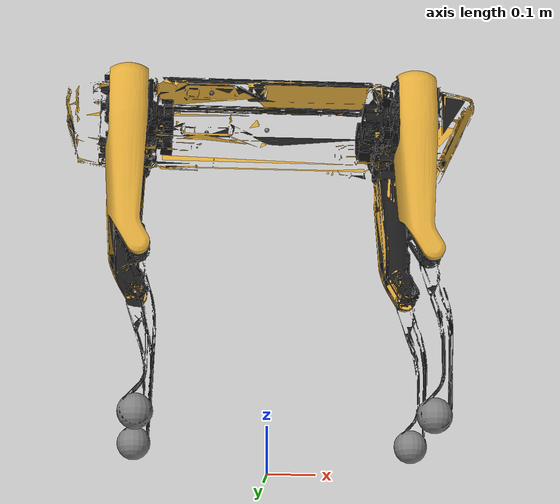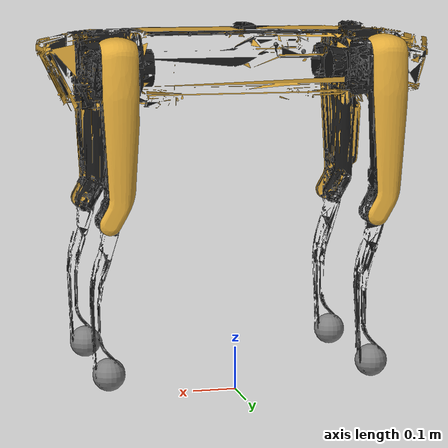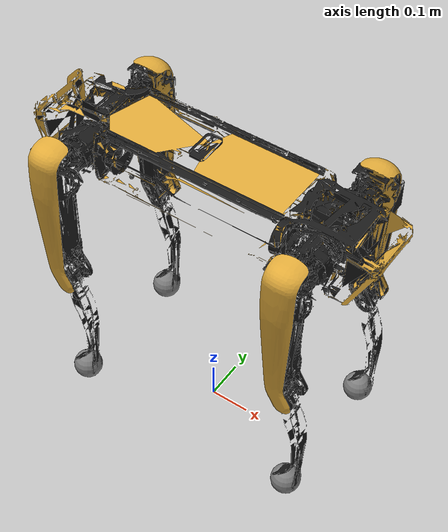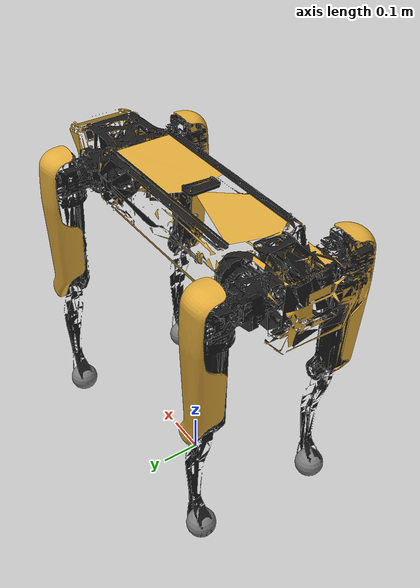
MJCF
<mujoco model="spot">
  <compiler angle="radian" meshdir="assets" autolimits="true" />

  <option cone="elliptic" impratio="100" />

  <default>
    <default class="spot">
      <geom friction="0.4" margin="0.001" condim="1"/>
      <joint axis="0 1 0" damping="0.1" armature="0.01" frictionloss="0.2"/>
      <motor ctrlrange="-80 80"/>
      <default class="abduction">
        <joint axis="1 0 0" range="-0.785398 0.785398"/>
      </default>
      <default class="hip">
        <joint range="-0.898845 2.29511"/>
      </default>
      <default class="knee">
        <joint range="-2.7929 -0.2474"/>
      </default>
      <default class="visual">
        <geom type="mesh" contype="0" conaffinity="0" group="2"/>
      </default>
      <default class="collision">
        <geom group="3" type="mesh"/>
        <default class="foot">
          <geom type="sphere" size="0.036" pos="0 0 -0.3365" priority="1" condim="6"
            friction="0.4 0.02 0.01"/>
        </default>
      </default>
    </default>
  </default>

  <asset>
    <material name="BlackAbs" rgba="0.1 0.1 0.1 1"/>
    <material name="wrap" rgba="0.878431 0.666666 0.227450 1"/>

    <mesh file="body_0.obj"/>
    <mesh file="body_1.obj"/>
    <mesh file="front_left_hip.obj"/>
    <mesh file="front_left_upper_leg_0.obj"/>
    <mesh file="front_left_upper_leg_1.obj"/>
    <mesh file="front_left_lower_leg.obj"/>
    <mesh file="front_right_hip.obj"/>
    <mesh file="front_right_upper_leg_0.obj"/>
    <mesh file="front_right_upper_leg_1.obj"/>
    <mesh file="front_right_lower_leg.obj"/>
    <mesh file="rear_left_hip.obj"/>
    <mesh file="rear_left_upper_leg_0.obj"/>
    <mesh file="rear_left_upper_leg_1.obj"/>
    <mesh file="rear_left_lower_leg.obj"/>
    <mesh file="rear_right_hip.obj"/>
    <mesh file="rear_right_upper_leg_0.obj"/>
    <mesh file="rear_right_upper_leg_1.obj"/>
    <mesh file="rear_right_lower_leg.obj"/>
    <mesh file="body_collision.obj"/>
    <mesh file="left_upper_leg_collision.obj"/>
    <mesh file="left_lower_leg_collision.obj"/>
    <mesh file="right_upper_leg_collision.obj"/>
    <mesh file="right_lower_leg_collision.obj"/>
  </asset>

  <worldbody>
    <body name="base_link" childclass="spot" pos="0 0 0.75">
      <freejoint />
      <inertial pos="0.0063944 -9.81216e-05 0.000911379" mass="32.86"
        diaginertia="0.13144 0.13144 0.13144"/>
      <geom mesh="body_0" material="BlackAbs" class="visual"/>
      <geom mesh="body_1" material="wrap" class="visual"/>
      <geom mesh="body_collision" class="collision"/>
      <site name="imu" pos="0 0 0" />
      <!-- Camera frames -->
      <site name="camera_front" pos="0.42 0 0" />
      <site name="camera_front_optical" pos="0.42 0 0" quat="0.5 -0.5 0.5 -0.5" />
      <camera name="camera_front" pos="0.42 0 0" quat="0.500000 0.500000 -0.500000 -0.500000" fovy="69"/>
      <site name="camera_front_right" pos="0.415 -0.037 -0.01"
        quat="0.707354 -0.631238 -0.036969 0.315946" />
      <site name="camera_front_right_optical" pos="0.415 -0.037 -0.01"
        quat="0.214515 -0.808785 -0.138400 -0.529807" />
      <camera name="camera_front_right" pos="0.415 -0.037 -0.01"
        quat="0.808785 0.214515 -0.529807 0.138400" fovy="69"/>
      <site name="camera_front_left" pos="0.415 0.037 -0.01"
        quat="0.707354 0.631238 -0.036969 -0.315946" />
      <site name="camera_front_left_optical" pos="0.415 0.037 -0.01"
        quat="0.529807 0.138400 0.808785 -0.214515" />
      <camera name="camera_front_left" pos="0.415 0.037 -0.01"
        quat="-0.138400 0.529807 -0.214515 -0.808785" fovy="69"/>
      <site name="camera_right" pos="-0.125 -0.12 0.035"
        quat="-0.070593 0.703574 -0.703574 -0.070593" />
      <site name="camera_right_optical" pos="-0.125 -0.12 0.035"
        quat="0.632981 0.774167 0 0" />
      <camera name="camera_right" pos="-0.125 -0.12 0.035"
        quat="0.000000 0.000000 -0.632981 -0.774167" fovy="69"/>
      <site name="camera_left" pos="-0.125 0.12 0.035"
        quat="0.070593 0.703574 0.703574 -0.070593" />
      <site name="camera_left_optical" pos="-0.125 0.12 0.035"
        quat="0 0 0.774167 0.632981" />
      <camera name="camera_left" pos="-0.125 0.12 0.035"
        quat="0.774167 0.632981 0.000000 0.000000" fovy="69"/>
      <site name="camera_back" pos="-0.425 0 0.01"
        quat="0 0.149438 0 -0.988771" />
      <site name="camera_back_optical" pos="-0.425 0 0.01"
        quat="-0.419666 0.569105 0.569105 -0.419666" />
      <camera name="camera_back" pos="-0.425 0 0.01"
        quat="-0.569105 -0.419666 -0.419666 -0.569105" fovy="69"/>
      <body name="FL_hip" pos="0.29785 0.055 0">
        <inertial pos="-0.00537435 0.0128418 9.87523e-05" quat="1 1 -1 1" mass="1.68"
          diaginertia="0.00226544 0.00211474 0.00181296"/>
        <joint name="FL_hip_joint" class="abduction" />
        <geom material="BlackAbs" mesh="front_left_hip" class="visual"/>
        <body name="FL_thigh" pos="0 0.1108 0">
          <inertial pos="0.00514237 -0.00243237 -0.121009" mass="2.34"
            diaginertia="0.0275596 0.0273549 0.00284815"/>
          <joint name="FL_thigh_joint" class="hip" />
          <geom mesh="front_left_upper_leg_0" material="wrap" class="visual"/>
          <geom mesh="front_left_upper_leg_1" material="BlackAbs" class="visual"/>
          <geom mesh="left_upper_leg_collision" class="collision"/>
          <body name="FL_calf" pos="0.025 0 -0.32">
            <inertial pos="0.00225794 4.6076e-05 -0.180082" quat="1 0 0 1" mass="0.35"
              diaginertia="0.00405032 0.00399902 0.00014934"/>
            <joint name="FL_calf_joint" class="knee" />
            <geom material="BlackAbs" mesh="front_left_lower_leg" class="visual"/>
            <geom mesh="left_lower_leg_collision" class="collision"/>
            <geom name="FL" class="foot"/>
            <site name="FL_foot_site" pos="0 0 -0.3365" size="0.036" />
            <body name="FL_foot" pos="0 0 -0.3365" />
          </body>
        </body>
      </body>
      <body name="FR_hip" pos="0.29785 -0.055 0">
        <inertial pos="-0.00537435 -0.0128418 -9.87523e-05" quat="1 1 -1 1" mass="1.68"
          diaginertia="0.00226544 0.00211474 0.00181296"/>
        <joint name="FR_hip_joint" class="abduction" />
        <geom material="BlackAbs" mesh="front_right_hip" class="visual"/>
        <body name="FR_thigh" pos="0 -0.1108 0">
          <inertial pos="0.00514237 0.00243237 -0.121009" mass="2.34"
            diaginertia="0.0275596 0.0273549 0.00284815"/>
          <joint name="FR_thigh_joint" class="hip" />
          <geom mesh="front_right_upper_leg_0" material="wrap" class="visual"/>
          <geom mesh="front_right_upper_leg_1" material="BlackAbs" class="visual"/>
          <geom mesh="right_upper_leg_collision" class="collision"/>
          <body name="FR_calf" pos="0.025 0 -0.32">
            <inertial pos="0.00225794 4.6076e-05 -0.180082" quat="1 0 0 1" mass="0.35"
              diaginertia="0.00405032 0.00399902 0.00014934"/>
            <joint name="FR_calf_joint" class="knee" />
            <geom material="BlackAbs" mesh="front_right_lower_leg" class="visual"/>
            <geom mesh="right_lower_leg_collision" class="collision"/>
            <geom name="FR" class="foot"/>
            <site name="FR_foot_site" pos="0 0 -0.3365" size="0.036" />
            <body name="FR_foot" pos="0 0 -0.3365" />
          </body>
        </body>
      </body>
      <body name="RL_hip" pos="-0.29785 0.055 0">
        <inertial pos="0.00537435 0.0128418 -9.87523e-05" quat="1 1 -1 1" mass="1.68"
          diaginertia="0.00226544 0.00211474 0.00181296"/>
        <joint name="RL_hip_joint" class="abduction" />
        <geom material="BlackAbs" mesh="rear_left_hip" class="visual"/>
        <body name="RL_thigh" pos="0 0.1108 0">
          <inertial pos="0.00514237 -0.00243237 -0.121009" mass="2.34"
            diaginertia="0.0275596 0.0273549 0.00284815"/>
          <joint name="RL_thigh_joint" class="hip" />
          <geom mesh="rear_left_upper_leg_0" material="wrap" class="visual"/>
          <geom mesh="rear_left_upper_leg_1" material="BlackAbs" class="visual"/>
          <geom mesh="left_upper_leg_collision" class="collision"/>
          <body name="RL_calf" pos="0.025 0 -0.32">
            <inertial pos="0.00225794 4.6076e-05 -0.180082" quat="1 0 0 1" mass="0.35"
              diaginertia="0.00405032 0.00399902 0.00014934"/>
            <joint name="RL_calf_joint" class="knee" />
            <geom material="BlackAbs" mesh="rear_left_lower_leg" class="visual"/>
            <geom mesh="left_lower_leg_collision" class="collision"/>
            <geom name="RL" class="foot"/>
            <site name="RL_foot_site" pos="0 0 -0.3365" size="0.036" />
            <body name="RL_foot" pos="0 0 -0.3365" />
          </body>
        </body>
      </body>
      <body name="RR_hip" pos="-0.29785 -0.055 0">
        <inertial pos="0.00537435 -0.0128418 9.87523e-05" quat="1 1 -1 1" mass="1.68"
          diaginertia="0.00226544 0.00211474 0.00181296"/>
        <joint name="RR_hip_joint" class="abduction" />
        <geom material="BlackAbs" mesh="rear_right_hip" class="visual"/>
        <body name="RR_thigh" pos="0 -0.1108 0">
          <inertial pos="0.00514237 0.00243237 -0.121009" mass="2.34"
            diaginertia="0.0275596 0.0273549 0.00284815"/>
          <joint name="RR_thigh_joint" class="hip" />
          <geom mesh="rear_right_upper_leg_0" material="wrap" class="visual"/>
          <geom mesh="rear_right_upper_leg_1" material="BlackAbs" class="visual"/>
          <geom mesh="right_upper_leg_collision" class="collision"/>
          <body name="RR_calf" pos="0.025 0 -0.32">
            <inertial pos="0.00225794 4.6076e-05 -0.180082" quat="1 0 0 1" mass="0.35"
              diaginertia="0.00405032 0.00399902 0.00014934"/>
            <joint name="RR_calf_joint" class="knee" />
            <geom material="BlackAbs" mesh="rear_right_lower_leg" class="visual"/>
            <geom mesh="right_lower_leg_collision" class="collision"/>
            <geom name="RR" class="foot"/>
            <site name="RR_foot_site" pos="0 0 -0.3365" size="0.036" />
            <body name="RR_foot" pos="0 0 -0.3365" />
          </body>
        </body>
      </body>
    </body>
  </worldbody>

  <contact>
    <exclude body1="base_link" body2="FL_thigh"/>
    <exclude body1="base_link" body2="FR_thigh"/>
    <exclude body1="base_link" body2="RL_thigh"/>
    <exclude body1="base_link" body2="RR_thigh"/>
  </contact>

  <actuator>
    <motor class="abduction" name="FR_hip" joint="FR_hip_joint" />
    <motor class="hip" name="FR_thigh" joint="FR_thigh_joint" />
    <motor class="knee" name="FR_calf" joint="FR_calf_joint" />
    <motor class="abduction" name="FL_hip" joint="FL_hip_joint" />
    <motor class="hip" name="FL_thigh" joint="FL_thigh_joint" />
    <motor class="knee" name="FL_calf" joint="FL_calf_joint" />
    <motor class="abduction" name="RR_hip" joint="RR_hip_joint" />
    <motor class="hip" name="RR_thigh" joint="RR_thigh_joint" />
    <motor class="knee" name="RR_calf" joint="RR_calf_joint" />
    <motor class="abduction" name="RL_hip" joint="RL_hip_joint" />
    <motor class="hip" name="RL_thigh" joint="RL_thigh_joint" />
    <motor class="knee" name="RL_calf" joint="RL_calf_joint" />
  </actuator>

  <sensor>
    <jointpos name="FR_hip_pos" joint="FR_hip_joint" />
    <jointpos name="FR_thigh_pos" joint="FR_thigh_joint" />
    <jointpos name="FR_calf_pos" joint="FR_calf_joint" />
    <jointpos name="FL_hip_pos" joint="FL_hip_joint" />
    <jointpos name="FL_thigh_pos" joint="FL_thigh_joint" />
    <jointpos name="FL_calf_pos" joint="FL_calf_joint" />
    <jointpos name="RR_hip_pos" joint="RR_hip_joint" />
    <jointpos name="RR_thigh_pos" joint="RR_thigh_joint" />
    <jointpos name="RR_calf_pos" joint="RR_calf_joint" />
    <jointpos name="RL_hip_pos" joint="RL_hip_joint" />
    <jointpos name="RL_thigh_pos" joint="RL_thigh_joint" />
    <jointpos name="RL_calf_pos" joint="RL_calf_joint" />

    <jointvel name="FR_hip_vel" joint="FR_hip_joint" />
    <jointvel name="FR_thigh_vel" joint="FR_thigh_joint" />
    <jointvel name="FR_calf_vel" joint="FR_calf_joint" />
    <jointvel name="FL_hip_vel" joint="FL_hip_joint" />
    <jointvel name="FL_thigh_vel" joint="FL_thigh_joint" />
    <jointvel name="FL_calf_vel" joint="FL_calf_joint" />
    <jointvel name="RR_hip_vel" joint="RR_hip_joint" />
    <jointvel name="RR_thigh_vel" joint="RR_thigh_joint" />
    <jointvel name="RR_calf_vel" joint="RR_calf_joint" />
    <jointvel name="RL_hip_vel" joint="RL_hip_joint" />
    <jointvel name="RL_thigh_vel" joint="RL_thigh_joint" />
    <jointvel name="RL_calf_vel" joint="RL_calf_joint" />

    <jointactuatorfrc name="FR_hip_torque" joint="FR_hip_joint" noise="0.01" />
    <jointactuatorfrc name="FR_thigh_torque" joint="FR_thigh_joint" noise="0.01" />
    <jointactuatorfrc name="FR_calf_torque" joint="FR_calf_joint" noise="0.01" />
    <jointactuatorfrc name="FL_hip_torque" joint="FL_hip_joint" noise="0.01" />
    <jointactuatorfrc name="FL_thigh_torque" joint="FL_thigh_joint" noise="0.01" />
    <jointactuatorfrc name="FL_calf_torque" joint="FL_calf_joint" noise="0.01" />
    <jointactuatorfrc name="RR_hip_torque" joint="RR_hip_joint" noise="0.01" />
    <jointactuatorfrc name="RR_thigh_torque" joint="RR_thigh_joint" noise="0.01" />
    <jointactuatorfrc name="RR_calf_torque" joint="RR_calf_joint" noise="0.01" />
    <jointactuatorfrc name="RL_hip_torque" joint="RL_hip_joint" noise="0.01" />
    <jointactuatorfrc name="RL_thigh_torque" joint="RL_thigh_joint" noise="0.01" />
    <jointactuatorfrc name="RL_calf_torque" joint="RL_calf_joint" noise="0.01" />

    <framequat name="imu_quat" objtype="site" objname="imu" />
    <gyro name="imu_gyro" site="imu" />
    <accelerometer name="imu_acc" site="imu" />

    <framepos name="frame_pos" objtype="site" objname="imu" />
    <framelinvel name="frame_vel" objtype="site" objname="imu" />

    <touch name="FR_foot_force" site="FR_foot_site" />
    <touch name="FL_foot_force" site="FL_foot_site" />
    <touch name="RR_foot_force" site="RR_foot_site" />
    <touch name="RL_foot_force" site="RL_foot_site" />
  </sensor>

  <keyframe>
    <key name="stand" qpos="0 0 0.46 1 0 0 0 0 1.04 -1.8 0 1.04 -1.8 0 1.04 -1.8 0 1.04 -1.8"
      ctrl="0 0 0 0 0 0 0 0 0 0 0 0" />
    <key name="sit" qpos="0 0 0.18 1 0 0 0 0 1.8 -2.6 0 1.8 -2.6 0 1.8 -2.6 0 1.8 -2.6"
      ctrl="0 0 0 0 0 0 0 0 0 0 0 0" />
  </keyframe>
</mujoco>
